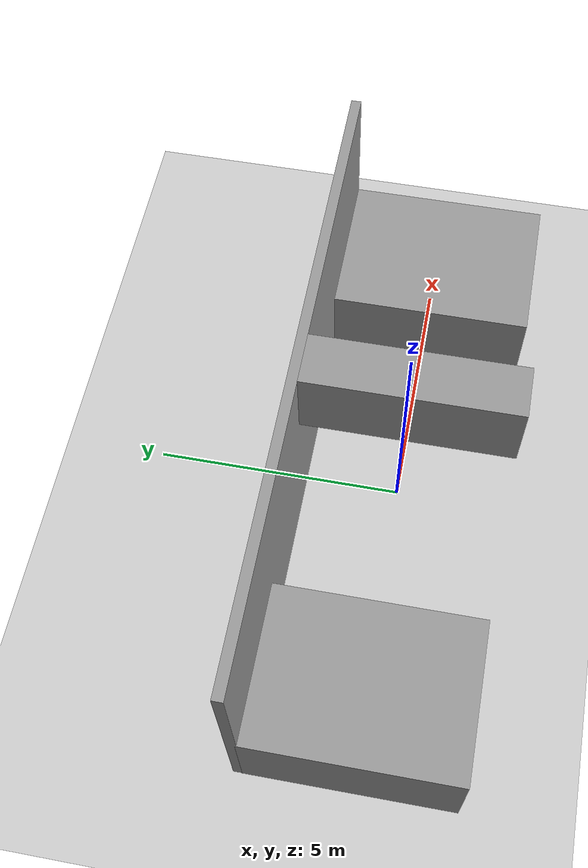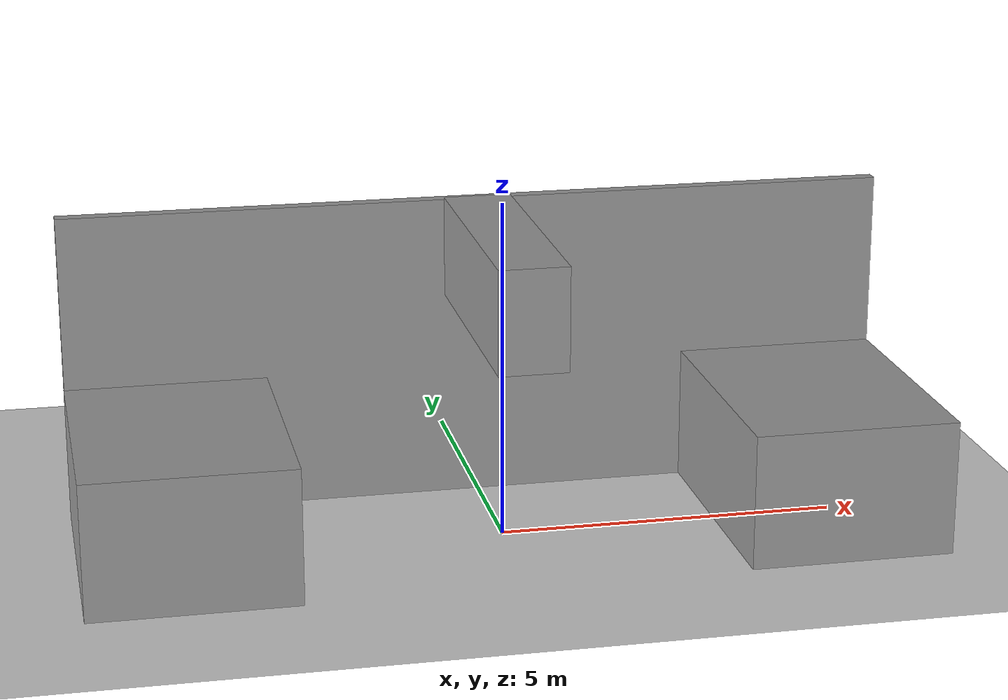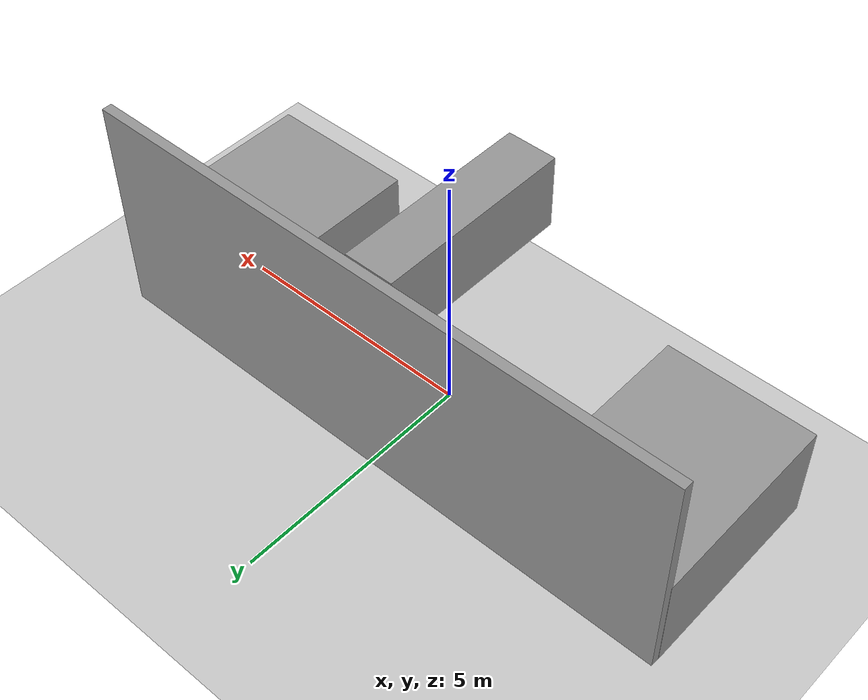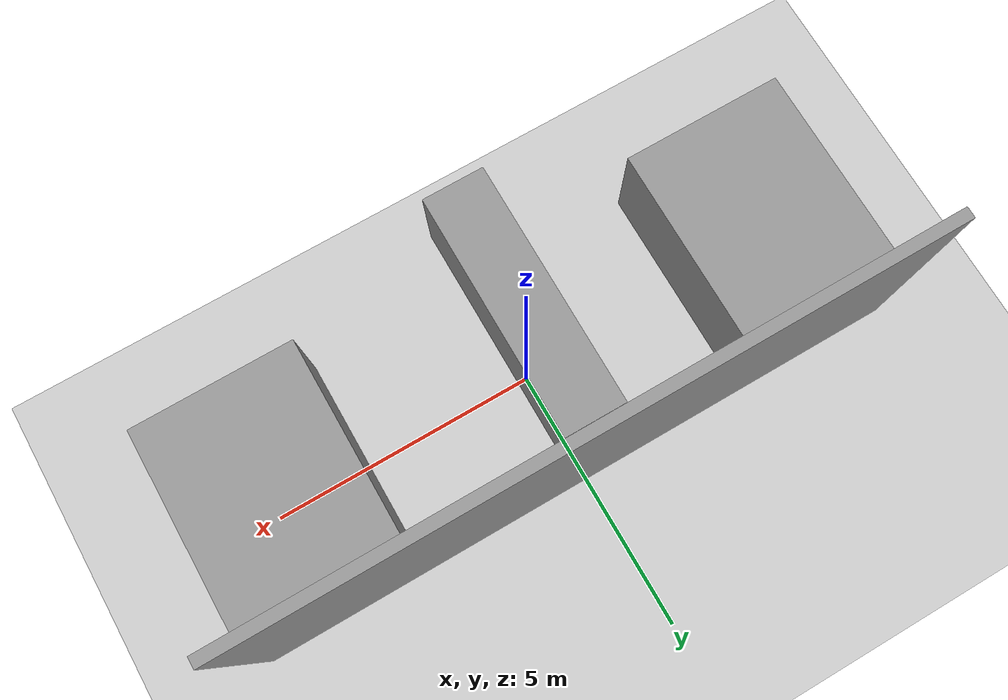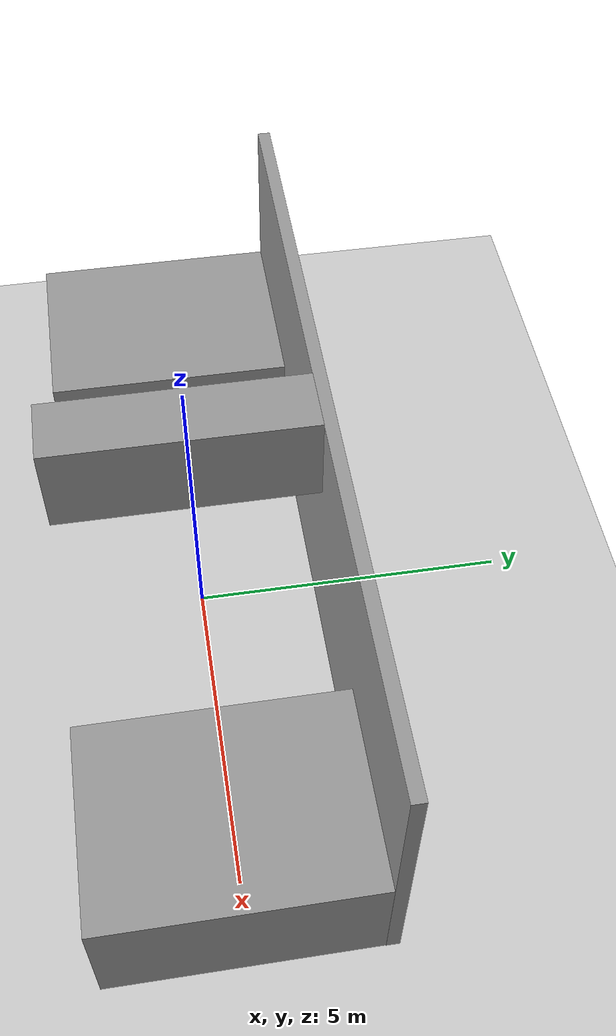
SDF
<sdf version="1.6">
 <world name="default">
  <light name="sun" type="directional">
   <pose>0 0 10 0 -0 0</pose>
   <diffuse>0.8 0.8 0.8 1</diffuse>
   <specular>0.2 0.2 0.2 1</specular>
   <attenuation>
    <range>1000</range>
    <constant>0.9</constant>
    <linear>0.01</linear>
    <quadratic>0.001</quadratic>
   </attenuation>
   <direction>-0.5 0.1 -0.9</direction>
  </light>
  <model name="ground_plane">
   <static>1</static>
   <link name="link">
    <collision name="collision">
     <geometry><plane><normal>0 0 1</normal><size>100 100</size></plane></geometry>
     <surface><friction><ode><mu>100</mu><mu2>50</mu2></ode></friction></surface>
    </collision>
    <visual name="visual">
     <cast_shadows>0</cast_shadows>
     <geometry><plane><normal>0 0 1</normal><size>100 100</size></plane></geometry>
     <material>
      <script><uri>file://media/materials/scripts/gazebo.material</uri><name>Gazebo/Grey</name></script>
     </material>
    </visual>
   </link>
  </model>
  <gravity>0 0 -9.8</gravity>
  <magnetic_field>6e-06 2.3e-05 -4.2e-05</magnetic_field>
  <atmosphere type="adiabatic"/>
  <physics name="default_physics" default="0" type="ode">
   <max_step_size>0.002</max_step_size>
   <real_time_factor>1</real_time_factor>
   <real_time_update_rate>500</real_time_update_rate>
  </physics>
  <scene><ambient>0.4 0.4 0.4 1</ambient><background>0.7 0.7 0.7 1</background><shadows>1</shadows></scene>
  <spherical_coordinates>
   <surface_model>EARTH_WGS84</surface_model>
   <latitude_deg>0</latitude_deg>
   <longitude_deg>0</longitude_deg>
   <elevation>0</elevation>
   <heading_deg>0</heading_deg>
  </spherical_coordinates>
  <plugin name="gazebo_octomap" filename="libBuildOctomapPlugin.so"/>
  <model name="stage_2_model">
   <link name="link_0">
    <inertial>
     <mass>1</mass>
     <inertia>
      <ixx>0.166667</ixx>
      <ixy>0</ixy>
      <ixz>0</ixz>
      <iyy>0.166667</iyy>
      <iyz>0</iyz>
      <izz>0.166667</izz>
     </inertia>
    </inertial>
    <pose>4.7 -0.532484 -0.725 0 -0 0</pose>
    <visual name="visual">
     <geometry><box><size>3 4 2</size></box></geometry>
     <material>
      <lighting>1</lighting>
      <script><uri>file://media/materials/scripts/gazebo.material</uri><name>Gazebo/Grey</name></script>
      <shader type="pixel"><normal_map>__default__</normal_map></shader>
      <ambient>0.3 0.3 0.3 1</ambient>
      <diffuse>0.7 0.7 0.7 1</diffuse>
      <specular>0.01 0.01 0.01 1</specular>
      <emissive>0 0 0 1</emissive>
     </material>
    </visual>
    <collision name="collision">
     <geometry><box><size>3 4 2</size></box></geometry>
     <surface>
      <friction>
       <ode><mu>1</mu><mu2>1</mu2><fdir1>0 0 0</fdir1><slip1>0</slip1><slip2>0</slip2></ode>
       <torsional>
        <coefficient>1</coefficient>
        <patch_radius>0</patch_radius>
        <surface_radius>0</surface_radius>
        <use_patch_radius>1</use_patch_radius>
        <ode><slip>0</slip></ode>
       </torsional>
      </friction>
      <bounce><restitution_coefficient>0</restitution_coefficient><threshold>1e+06</threshold></bounce>
      <contact>
       <collide_without_contact>0</collide_without_contact>
       <collide_without_contact_bitmask>1</collide_without_contact_bitmask>
       <collide_bitmask>1</collide_bitmask>
       <ode>
        <soft_cfm>0</soft_cfm>
        <soft_erp>0.2</soft_erp>
        <kp>1e+13</kp>
        <kd>1</kd>
        <max_vel>0.01</max_vel>
        <min_depth>0</min_depth>
       </ode>
       <bullet>
        <split_impulse>1</split_impulse>
        <split_impulse_penetration_threshold>-0.01</split_impulse_penetration_threshold>
        <soft_cfm>0</soft_cfm>
        <soft_erp>0.2</soft_erp>
        <kp>1e+13</kp>
        <kd>1</kd>
       </bullet>
      </contact>
     </surface>
    </collision>
   </link>
   <link name="link_0_clone">
    <inertial>
     <mass>1</mass>
     <inertia>
      <ixx>0.166667</ixx>
      <ixy>0</ixy>
      <ixz>0</ixz>
      <iyy>0.166667</iyy>
      <iyz>0</iyz>
      <izz>0.166667</izz>
     </inertia>
    </inertial>
    <pose>-4.7 -0.502548 -0.725 0 -0 0</pose>
    <visual name="visual">
     <geometry><box><size>3 4 2</size></box></geometry>
     <material>
      <lighting>1</lighting>
      <script><uri>file://media/materials/scripts/gazebo.material</uri><name>Gazebo/Grey</name></script>
      <shader type="pixel"><normal_map>__default__</normal_map></shader>
      <ambient>0.3 0.3 0.3 1</ambient>
      <diffuse>0.7 0.7 0.7 1</diffuse>
      <specular>0.01 0.01 0.01 1</specular>
      <emissive>0 0 0 1</emissive>
     </material>
    </visual>
    <collision name="collision">
     <geometry><box><size>3 4 2</size></box></geometry>
     <surface>
      <friction>
       <ode><mu>1</mu><mu2>1</mu2><fdir1>0 0 0</fdir1><slip1>0</slip1><slip2>0</slip2></ode>
       <torsional>
        <coefficient>1</coefficient>
        <patch_radius>0</patch_radius>
        <surface_radius>0</surface_radius>
        <use_patch_radius>1</use_patch_radius>
        <ode><slip>0</slip></ode>
       </torsional>
      </friction>
      <bounce><restitution_coefficient>0</restitution_coefficient><threshold>1e+06</threshold></bounce>
      <contact>
       <collide_without_contact>0</collide_without_contact>
       <collide_without_contact_bitmask>1</collide_without_contact_bitmask>
       <collide_bitmask>1</collide_bitmask>
       <ode>
        <soft_cfm>0</soft_cfm>
        <soft_erp>0.2</soft_erp>
        <kp>1e+13</kp>
        <kd>1</kd>
        <max_vel>0.01</max_vel>
        <min_depth>0</min_depth>
       </ode>
       <bullet>
        <split_impulse>1</split_impulse>
        <split_impulse_penetration_threshold>-0.01</split_impulse_penetration_threshold>
        <soft_cfm>0</soft_cfm>
        <soft_erp>0.2</soft_erp>
        <kp>1e+13</kp>
        <kd>1</kd>
       </bullet>
      </contact>
     </surface>
    </collision>
   </link>
   <link name="link_1">
    <inertial>
     <mass>2.87601</mass>
     <inertia><ixx>4.327</ixx><ixy>0</ixy><ixz>0</ixz><iyy>0.731984</iyy><iyz>0</iyz><izz>4.07435</izz></inertia>
    </inertial>
    <pose>0.005687 -0.532484 2.15798 0 -0 0</pose>
    <visual name="visual">
     <geometry><box><size>1 4 1.5</size></box></geometry>
     <material>
      <lighting>1</lighting>
      <script><uri>file://media/materials/scripts/gazebo.material</uri><name>Gazebo/Grey</name></script>
      <shader type="pixel"><normal_map>__default__</normal_map></shader>
      <emissive>0 0 0 1</emissive>
      <ambient>0.3 0.3 0.3 1</ambient>
      <diffuse>0.7 0.7 0.7 1</diffuse>
      <specular>0.01 0.01 0.01 1</specular>
     </material>
    </visual>
    <collision name="collision">
     <geometry><box><size>1 4 1.43324</size></box></geometry>
     <surface>
      <friction>
       <ode><mu>1</mu><mu2>1</mu2><fdir1>0 0 0</fdir1><slip1>0</slip1><slip2>0</slip2></ode>
       <torsional>
        <coefficient>1</coefficient>
        <patch_radius>0</patch_radius>
        <surface_radius>0</surface_radius>
        <use_patch_radius>1</use_patch_radius>
        <ode><slip>0</slip></ode>
       </torsional>
      </friction>
      <bounce><restitution_coefficient>0</restitution_coefficient><threshold>1e+06</threshold></bounce>
      <contact>
       <collide_without_contact>0</collide_without_contact>
       <collide_without_contact_bitmask>1</collide_without_contact_bitmask>
       <collide_bitmask>1</collide_bitmask>
       <ode>
        <soft_cfm>0</soft_cfm>
        <soft_erp>0.2</soft_erp>
        <kp>1e+13</kp>
        <kd>1</kd>
        <max_vel>0.01</max_vel>
        <min_depth>0</min_depth>
       </ode>
       <bullet>
        <split_impulse>1</split_impulse>
        <split_impulse_penetration_threshold>-0.01</split_impulse_penetration_threshold>
        <soft_cfm>0</soft_cfm>
        <soft_erp>0.2</soft_erp>
        <kp>1e+13</kp>
        <kd>1</kd>
       </bullet>
      </contact>
     </surface>
    </collision>
   </link>
   <link name="link_2">
    <inertial>
     <mass>10.1153</mass>
     <inertia><ixx>10.422</ixx><ixy>0</ixy><ixz>0</ixz><iyy>95.109</iyy><iyz>0</iyz><izz>84.8268</izz></inertia>
    </inertial>
    <pose>0.005687 1.56752 0.575 0 -0 0</pose>
    <visual name="visual">
     <geometry><box><size>12.4 0.2 4.6</size></box></geometry>
     <material>
      <lighting>1</lighting>
      <script><uri>file://media/materials/scripts/gazebo.material</uri><name>Gazebo/Grey</name></script>
      <shader type="pixel"><normal_map>__default__</normal_map></shader>
      <ambient>0.3 0.3 0.3 1</ambient>
      <diffuse>0.7 0.7 0.7 1</diffuse>
      <specular>0.01 0.01 0.01 1</specular>
      <emissive>0 0 0 1</emissive>
     </material>
    </visual>
    <collision name="collision">
     <geometry><box><size>12.4 0.2 4.6</size></box></geometry>
     <surface>
      <friction>
       <ode><mu>1</mu><mu2>1</mu2><fdir1>0 0 0</fdir1><slip1>0</slip1><slip2>0</slip2></ode>
       <torsional>
        <coefficient>1</coefficient>
        <patch_radius>0</patch_radius>
        <surface_radius>0</surface_radius>
        <use_patch_radius>1</use_patch_radius>
        <ode><slip>0</slip></ode>
       </torsional>
      </friction>
      <bounce><restitution_coefficient>0</restitution_coefficient><threshold>1e+06</threshold></bounce>
      <contact>
       <collide_without_contact>0</collide_without_contact>
       <collide_without_contact_bitmask>1</collide_without_contact_bitmask>
       <collide_bitmask>1</collide_bitmask>
       <ode>
        <soft_cfm>0</soft_cfm>
        <soft_erp>0.2</soft_erp>
        <kp>1e+13</kp>
        <kd>1</kd>
        <max_vel>0.01</max_vel>
        <min_depth>0</min_depth>
       </ode>
       <bullet>
        <split_impulse>1</split_impulse>
        <split_impulse_penetration_threshold>-0.01</split_impulse_penetration_threshold>
        <soft_cfm>0</soft_cfm>
        <soft_erp>0.2</soft_erp>
        <kp>1e+13</kp>
        <kd>1</kd>
       </bullet>
      </contact>
     </surface>
    </collision>
   </link>
   <joint name="link_0_JOINT_0" type="fixed">
    <parent>link_0</parent>
    <child>link_2</child>
    <physics>
     <ode><limit><cfm>0</cfm><erp>0.2</erp></limit><suspension><cfm>0</cfm><erp>0.2</erp></suspension></ode>
    </physics>
   </joint>
   <joint name="link_0_clone_JOINT_1" type="fixed">
    <parent>link_0_clone</parent>
    <child>link_2</child>
    <physics>
     <ode><limit><cfm>0</cfm><erp>0.2</erp></limit><suspension><cfm>0</cfm><erp>0.2</erp></suspension></ode>
    </physics>
   </joint>
   <joint name="link_2_JOINT_2" type="fixed">
    <parent>link_2</parent>
    <child>link_1</child>
    <physics>
     <ode><limit><cfm>0</cfm><erp>0.2</erp></limit><suspension><cfm>0</cfm><erp>0.2</erp></suspension></ode>
    </physics>
   </joint>
   <static>0</static>
   <pose>-0.001505 0.432264 1.725 0 -0 0.000959</pose>
  </model>
  <plugin name="gazebo_octomap" filename="libBuildOctomapPlugin.so"/>
  <plugin name="ros_link_attacher_plugin" filename="libgazebo_ros_link_attacher_plugin.so"/>
 </world>
</sdf>
